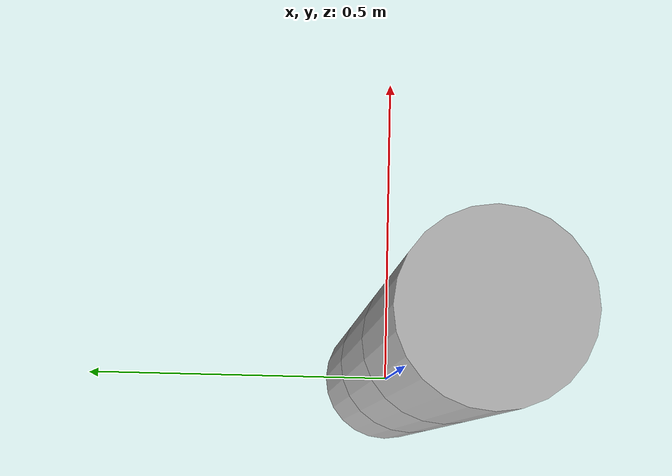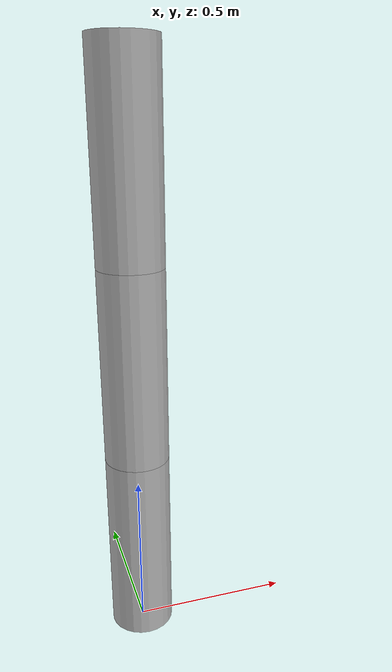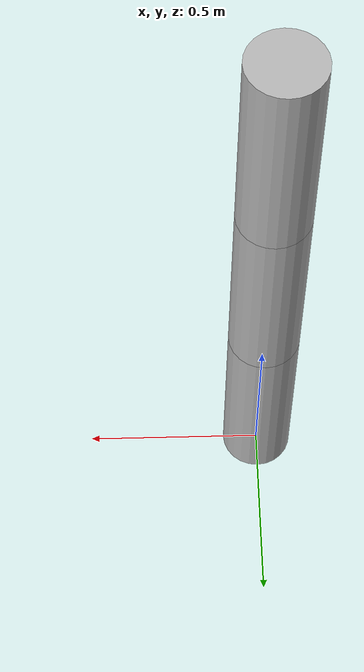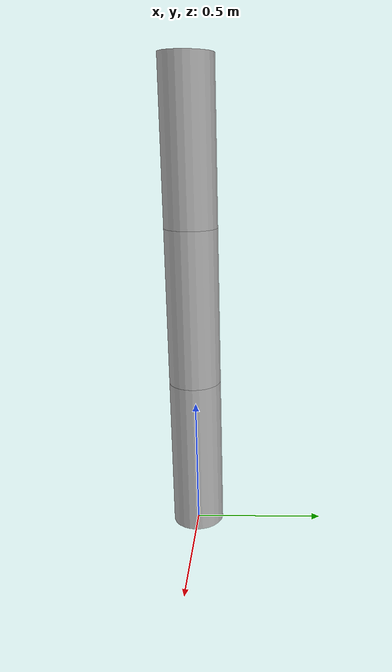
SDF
<sdf version='1.6'>
  <model name='two_dof_robot'>
    <link name='link1'>
      <pose frame=''>0 0 0 0 -0 0</pose>
      <inertial>
        <pose frame=''>0 0 0.3 0 -0 0</pose>
        <mass>1</mass>
        <inertia>
          <ixx>0.0325</ixx>
          <ixy>0</ixy>
          <ixz>0</ixz>
          <iyy>0.0325</iyy>
          <iyz>0</iyz>
          <izz>0.005</izz>
        </inertia>
      </inertial>
      <collision name='link1_collision'>
        <pose frame=''>0 0 0.3 0 -0 0</pose>
        <geometry>
          <cylinder>
            <length>0.6</length>
            <radius>0.1</radius>
          </cylinder>
        </geometry>
      </collision>
      <visual name='link1_visual'>
        <pose frame=''>0 0 0.3 0 -0 0</pose>
        <geometry>
          <cylinder>
            <length>0.6</length>
            <radius>0.1</radius>
          </cylinder>
        </geometry>
      </visual>
    </link>
    <link name='link2'>
      <pose frame=''>0 0 0.6 0 -0 0</pose>
      <inertial>
        <pose frame=''>0 0 0.3 0 -0 0</pose>
        <mass>1</mass>
        <inertia>
          <ixx>0.0325</ixx>
          <ixy>0</ixy>
          <ixz>0</ixz>
          <iyy>0.0325</iyy>
          <iyz>0</iyz>
          <izz>0.005</izz>
        </inertia>
      </inertial>
      <collision name='link2_collision'>
        <pose frame=''>0 0 0.3 0 -0 0</pose>
        <geometry>
          <cylinder>
            <length>0.6</length>
            <radius>0.1</radius>
          </cylinder>
        </geometry>
      </collision>
      <visual name='link2_visual'>
        <pose frame=''>0 0 0.3 0 -0 0</pose>
        <geometry>
          <cylinder>
            <length>0.6</length>
            <radius>0.1</radius>
          </cylinder>
        </geometry>
      </visual>
    </link>
    <joint name='joint1' type='revolute'>
      <child>link2</child>
      <parent>link1</parent>
      <axis>
        <xyz>1 0 0</xyz>
        <limit>
          <lower>-1.5708</lower>
          <upper>1.5708</upper>
          <effort>30</effort>
          <velocity>1</velocity>
        </limit>
        <dynamics>
          <spring_reference>0</spring_reference>
          <spring_stiffness>0</spring_stiffness>
        </dynamics>
        <use_parent_model_frame>1</use_parent_model_frame>
      </axis>
    </joint>
    <link name='link3'>
      <pose frame=''>0 0 1.2 0 -0 0</pose>
      <inertial>
        <pose frame=''>0 0 0.3 0 -0 0</pose>
        <mass>1</mass>
        <inertia>
          <ixx>0.0325</ixx>
          <ixy>0</ixy>
          <ixz>0</ixz>
          <iyy>0.0325</iyy>
          <iyz>0</iyz>
          <izz>0.005</izz>
        </inertia>
      </inertial>
      <collision name='link3_collision'>
        <pose frame=''>0 0 0.3 0 -0 0</pose>
        <geometry>
          <cylinder>
            <length>0.6</length>
            <radius>0.1</radius>
          </cylinder>
        </geometry>
      </collision>
      <visual name='link3_visual'>
        <pose frame=''>0 0 0.3 0 -0 0</pose>
        <geometry>
          <cylinder>
            <length>0.6</length>
            <radius>0.1</radius>
          </cylinder>
        </geometry>
      </visual>
    </link>
    <joint name='joint2' type='revolute'>
      <child>link3</child>
      <parent>link2</parent>
      <axis>
        <xyz>1 0 0</xyz>
        <limit>
          <lower>-1.5708</lower>
          <upper>1.5708</upper>
          <effort>30</effort>
          <velocity>1</velocity>
        </limit>
        <dynamics>
          <spring_reference>0</spring_reference>
          <spring_stiffness>0</spring_stiffness>
        </dynamics>
        <use_parent_model_frame>1</use_parent_model_frame>
      </axis>
    </joint>
  </model>
</sdf>
